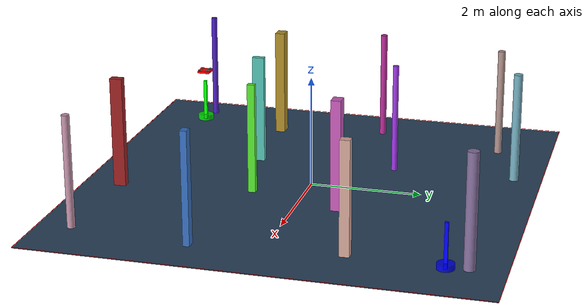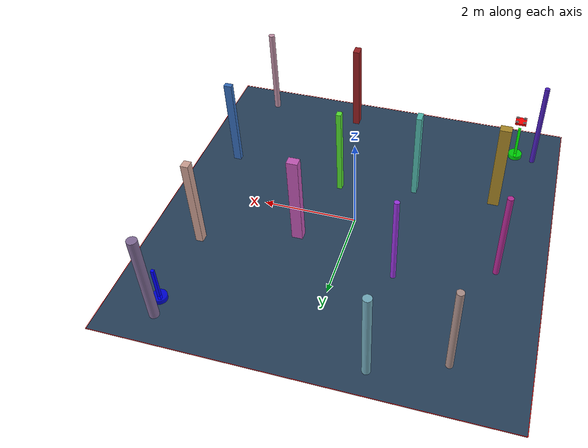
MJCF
<?xml version='1.0' encoding='utf-8'?>
<mujoco model="complex_uav_env">
  <compiler angle="degree" coordinate="local" inertiafromgeom="true" />
  <option integrator="RK4" timestep="0.01" />

  <visual>
    <headlight diffuse="0.6 0.6 0.6" ambient="0.3 0.3 0.3" />
    <rgba haze="0.15 0.25 0.35 1" />
    <global offwidth="2560" offheight="1440" />
  </visual>

  <asset>
    <texture type="skybox" builtin="gradient" rgb1="0.3 0.5 0.7" rgb2="0 0 0" width="512" height="3072" />
    <texture name="grid" type="2d" builtin="checker" rgb1="0.1 0.2 0.3" rgb2="0.2 0.3 0.4" width="512" height="512" />
    <material name="grid" texture="grid" texrepeat="1 1" />
  </asset>

  <worldbody>

    <geom name="ground" type="plane" size="4.0 4.0 0.1" material="grid" />
    <light name="light1" pos="0 0 4" dir="0 0 -1" diffuse="1 1 1" />

    <geom name="start_marker" type="cylinder" size="0.15 0.05" pos="-3.0 -3.0 0.05" rgba="0 1 0 0.8" />
    <geom name="start_pole" type="box" size="0.03 0.03 0.4" pos="-3.0 -3.0 0.4" rgba="0 1 0 1" />

    <geom name="goal_marker" type="cylinder" size="0.15 0.05" pos="3.0 3.0 0.05" rgba="0 0 1 0.8" />
    <geom name="goal_pole" type="box" size="0.03 0.03 0.4" pos="3.0 3.0 0.4" rgba="0 0 1 1" />

    <body name="chassis" pos="-3.0 -3.0 1.0">
      <joint type="free" name="root" />
      <geom type="box" size="0.12 0.12 0.02" rgba="1.0 0.0 0.0 1.0" mass="0.8" />

      <geom type="box" size="0.08 0.01 0.005" pos="0 0 0.01" rgba="0.3 0.3 0.3 1" />
      <geom type="box" size="0.01 0.08 0.005" pos="0 0 0.01" rgba="0.3 0.3 0.3 1" />

      <geom type="cylinder" size="0.015 0.02" pos="0.08 0.08 0.015" rgba="0.2 0.2 0.2 1" />
      <geom type="cylinder" size="0.015 0.02" pos="-0.08 0.08 0.015" rgba="0.2 0.2 0.2 1" />
      <geom type="cylinder" size="0.015 0.02" pos="0.08 -0.08 0.015" rgba="0.2 0.2 0.2 1" />
      <geom type="cylinder" size="0.015 0.02" pos="-0.08 -0.08 0.015" rgba="0.2 0.2 0.2 1" />

      <geom type="cylinder" size="0.04 0.002" pos="0.08 0.08 0.035" rgba="0.7 0.7 0.7 0.8" />
      <geom type="cylinder" size="0.04 0.002" pos="-0.08 0.08 0.035" rgba="0.7 0.7 0.7 0.8" />
      <geom type="cylinder" size="0.04 0.002" pos="0.08 -0.08 0.035" rgba="0.7 0.7 0.7 0.8" />
      <geom type="cylinder" size="0.04 0.002" pos="-0.08 -0.08 0.035" rgba="0.7 0.7 0.7 0.8" />

      <site name="motor1" pos="0.08 0.08 0" size="0.01" />
      <site name="motor2" pos="-0.08 0.08 0" size="0.01" />
      <site name="motor3" pos="0.08 -0.08 0" size="0.01" />
      <site name="motor4" pos="-0.08 -0.08 0" size="0.01" />
    </body>
    <geom name="test_obs_0" type="cylinder" size="0.060661582847904724 1.0" pos="-3.044160868931893 0.6489832650972115 1.0" rgba="0.703359446460273 0.16489254130954178 0.5808457873554277 1.0" />
    <geom name="test_obs_1" type="cylinder" size="0.09870224811892866 1.0" pos="2.9343079536756678 3.3715863599771594 1.0" rgba="0.5113925405542936 0.42769640731715763 0.6003076352606368 1.0" />
    <geom name="test_obs_2" type="cylinder" size="0.052683260209083815 1.0" pos="-1.1229610893574535 1.2875169299288938 1.0" rgba="0.6075846993696546 0.20539077320406537 0.8839556145112114 1.0" />
    <geom name="test_obs_3" type="box" size="0.07240087118716927 0.11059985792194899 1.0" pos="0.8657030994532634 -3.3173547666193532 1.0" rgba="0.5910075853169642 0.12330025874307955 0.1307457487515299 1.0" />
    <geom name="test_obs_4" type="box" size="0.05248246131278164 0.06634645288248324 1.0" pos="0.5920940631969634 -0.9237218099821775 1.0" rgba="0.3298966946517943 0.8854843638889882 0.1852303850254149 1.0" />
    <geom name="test_obs_5" type="box" size="0.11398864264601685 0.09007051578761924 1.0" pos="1.00828891845278 0.7240783535658964 1.0" rgba="0.7653495972991808 0.3426547031973762 0.7105606109132355 1.0" />
    <geom name="test_obs_6" type="cylinder" size="0.08092330565316373 1.0" pos="-1.1673523758344104 3.4970009057073996 1.0" rgba="0.4472004043012888 0.6683167032504395 0.7353468595634615 1.0" />
    <geom name="test_obs_7" type="box" size="0.0839236184305857 0.056421457427157234 1.0" pos="3.1451789578262987 -1.259197053509947 1.0" rgba="0.20728345459076475 0.4276417572803133 0.7316333127678001 1.0" />
    <geom name="test_obs_8" type="box" size="0.11937029489855405 0.08882923945441185 1.0" pos="-2.730483558217453 -1.3297435962779816 1.0" rgba="0.6673063686861493 0.5367451345763392 0.1549999300612421 1.0" />
    <geom name="test_obs_9" type="cylinder" size="0.06872013149593015 1.0" pos="-2.5393864699048345 2.9994110591412704 1.0" rgba="0.6705019338169649 0.558365321410538 0.5360002034412099 1.0" />
    <geom name="test_obs_10" type="cylinder" size="0.055050318928317424 1.0" pos="-3.404430145754417 -2.920544152783629 1.0" rgba="0.29578215576491634 0.11934321788898093 0.7423966845247224 1.0" />
    <geom name="test_obs_11" type="box" size="0.07651628183742122 0.08613264291159697 1.0" pos="2.9066353366873665 1.3387135017094864 1.0" rgba="0.8089026027122226 0.6307339740541715 0.580846439181527 1.0" />
    <geom name="test_obs_12" type="box" size="0.05579954510809751 0.10939075450625232 1.0" pos="-1.0059240051776792 -1.2704570760631972 1.0" rgba="0.3146627361394775 0.7313352666123981 0.682642653689367 1.0" />
    <geom name="test_obs_13" type="cylinder" size="0.06924275994751304 1.0" pos="2.953852338677426 -3.395441272139995 1.0" rgba="0.7531755358099912 0.5678017468361579 0.6529609746712383 1.0" />
  <geom name="boundary_north" type="box" size="4.0 0.005 0.002" pos="0 4.0 0.002" rgba="1.0 0.0 0.0 1.0" /><geom name="boundary_south" type="box" size="4.0 0.005 0.002" pos="0 -4.0 0.002" rgba="1.0 0.0 0.0 1.0" /><geom name="boundary_east" type="box" size="0.005 4.0 0.002" pos="4.0 0 0.002" rgba="1.0 0.0 0.0 1.0" /><geom name="boundary_west" type="box" size="0.005 4.0 0.002" pos="-4.0 0 0.002" rgba="1.0 0.0 0.0 1.0" /></worldbody>

  <actuator>
    <motor name="m1" gear="0 0 1 0 0 0" site="motor1" />
    <motor name="m2" gear="0 0 1 0 0 0" site="motor2" />
    <motor name="m3" gear="0 0 1 0 0 0" site="motor3" />
    <motor name="m4" gear="0 0 1 0 0 0" site="motor4" />
  </actuator>
</mujoco>
